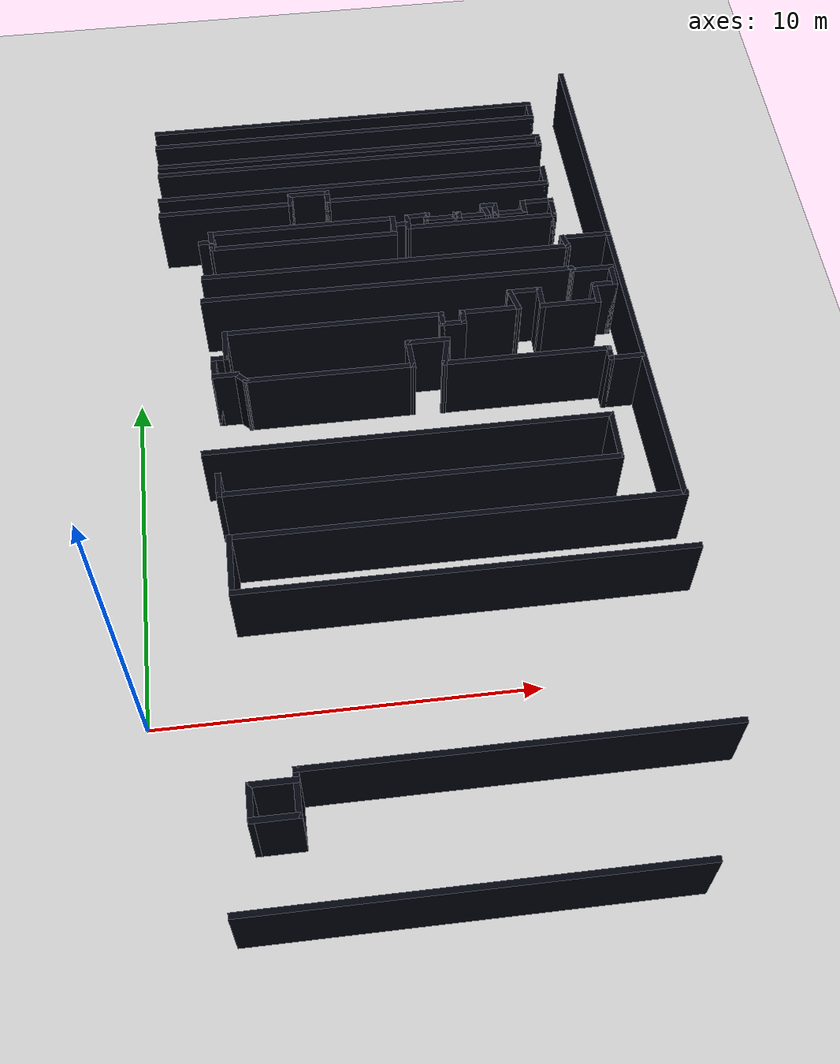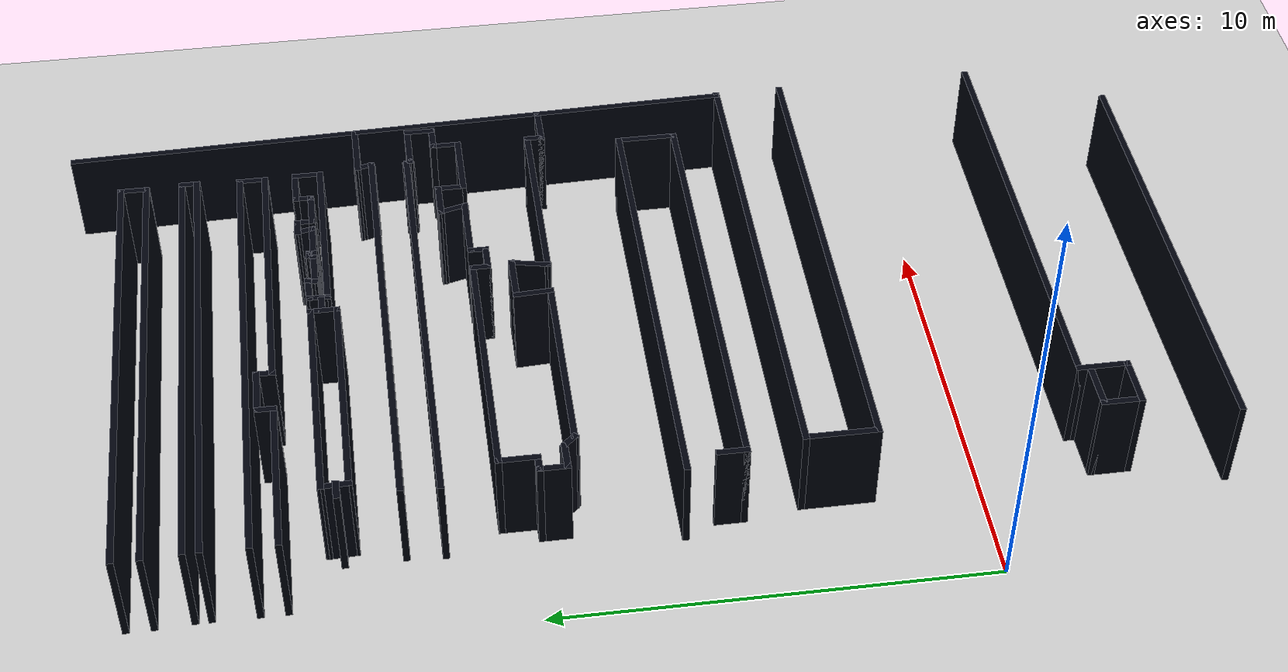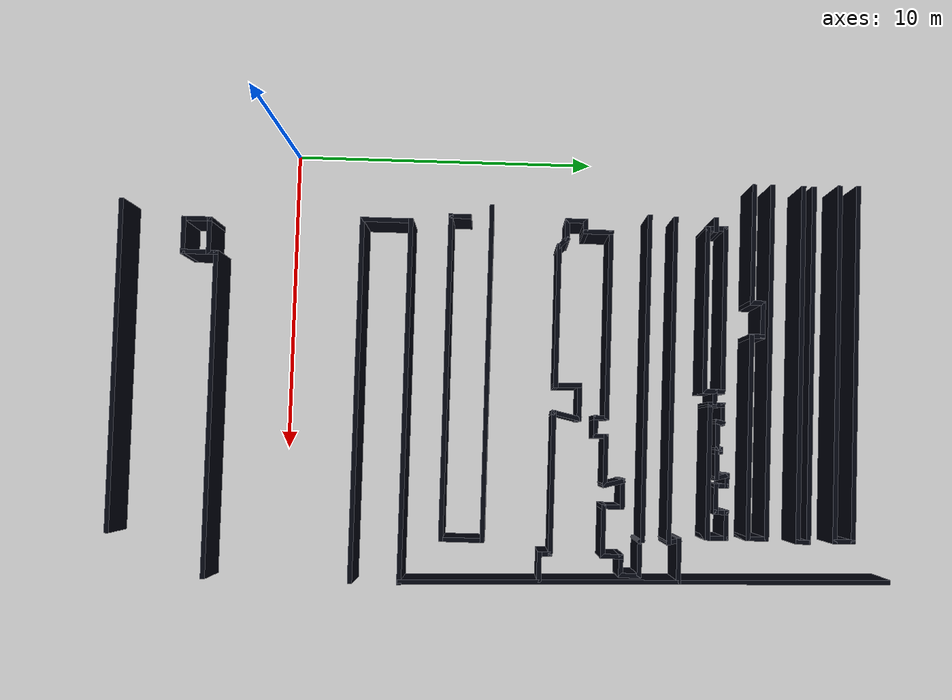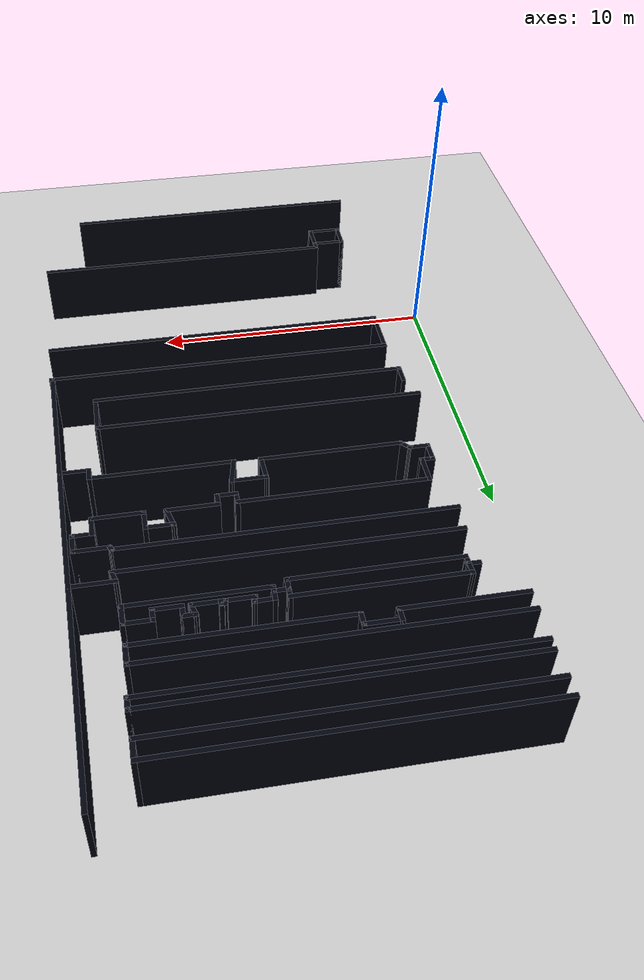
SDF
<sdf version="1.8">
 <world name="CDL_map">
  <model name="ground_plane">
   <static>1</static>
   <link name="link">
    <collision name="collision">
     <geometry><plane><normal>0 0 1</normal><size>100 100</size></plane></geometry>
    </collision>
    <visual name="visual">
     <geometry><plane><normal>0 0 1</normal><size>100 100</size></plane></geometry>
     <material>
      <ambient>0.8 0.8 0.8 1</ambient>
      <diffuse>0.8 0.8 0.8 1</diffuse>
      <specular>0.8 0.8 0.8 1</specular>
     </material>
     <plugin name="__default__" filename="__default__"/>
    </visual>
   </link>
   <plugin name="__default__" filename="__default__"/>
  </model>
  <model name="border">
   <pose>0 0 1 0 0 0</pose>
   <static>true</static>
   <link name="Wall_125">
    <pose>6.72296 18.1772 0 0 -0 0</pose>
    <static>true</static>
    <collision name="Wall_125_Collision"><geometry><box><size>11.75 0.15 2.5</size></box></geometry></collision>
    <visual name="Wall_125_Visual">
     <geometry><box><size>11.75 0.15 2.5</size></box></geometry>
     <material>
      <ambient>0.1 0.1 0.1 1</ambient>
      <diffuse>0 0.01 0.05 1</diffuse>
      <specular>0 0.01 0.05 1</specular>
     </material>
    </visual>
   </link>
   <link name="Wall_126">
    <pose>12.523 18.4772 0 0 -0 1.5708</pose>
    <static>true</static>
    <collision name="Wall_126_Collision"><geometry><box><size>0.75 0.15 2.5</size></box></geometry></collision>
    <visual name="Wall_126_Visual">
     <geometry><box><size>0.75 0.15 2.5</size></box></geometry>
     <material>
      <ambient>0.1 0.1 0.1 1</ambient>
      <diffuse>0 0.01 0.05 1</diffuse>
      <specular>0 0.01 0.05 1</specular>
     </material>
    </visual>
   </link>
   <link name="Wall_127">
    <pose>6.72296 18.7772 0 0 -0 3.14159</pose>
    <static>true</static>
    <collision name="Wall_127_Collision"><geometry><box><size>11.75 0.15 2.5</size></box></geometry></collision>
    <visual name="Wall_127_Visual">
     <geometry><box><size>11.75 0.15 2.5</size></box></geometry>
     <material>
      <ambient>0.1 0.1 0.1 1</ambient>
      <diffuse>0 0.01 0.05 1</diffuse>
      <specular>0 0.01 0.05 1</specular>
     </material>
    </visual>
   </link>
   <link name="Wall_130">
    <pose>6.77468 17.3239 0 0 -0 0</pose>
    <static>true</static>
    <collision name="Wall_130_Collision"><geometry><box><size>11.75 0.15 2.5</size></box></geometry></collision>
    <visual name="Wall_130_Visual">
     <geometry><box><size>11.75 0.15 2.5</size></box></geometry>
     <material>
      <ambient>0.1 0.1 0.1 1</ambient>
      <diffuse>0 0.01 0.05 1</diffuse>
      <specular>0 0.01 0.05 1</specular>
     </material>
    </visual>
   </link>
   <link name="Wall_131">
    <pose>12.5747 17.1489 0 0 -0 -1.5708</pose>
    <static>true</static>
    <collision name="Wall_131_Collision"><geometry><box><size>0.5 0.15 2.5</size></box></geometry></collision>
    <visual name="Wall_131_Visual">
     <geometry><box><size>0.5 0.15 2.5</size></box></geometry>
     <material>
      <ambient>0.1 0.1 0.1 1</ambient>
      <diffuse>0 0.01 0.05 1</diffuse>
      <specular>0 0.01 0.05 1</specular>
     </material>
    </visual>
   </link>
   <link name="Wall_132">
    <pose>6.77468 16.9739 0 0 -0 3.14159</pose>
    <static>true</static>
    <collision name="Wall_132_Collision"><geometry><box><size>11.75 0.15 2.5</size></box></geometry></collision>
    <visual name="Wall_132_Visual">
     <geometry><box><size>11.75 0.15 2.5</size></box></geometry>
     <material>
      <ambient>0.1 0.1 0.1 1</ambient>
      <diffuse>0 0.01 0.05 1</diffuse>
      <specular>0 0.01 0.05 1</specular>
     </material>
    </visual>
   </link>
   <link name="Wall_136">
    <pose>2.88675 15.3534 0 0 -0 0</pose>
    <static>true</static>
    <collision name="Wall_136_Collision"><geometry><box><size>4 0.15 2.5</size></box></geometry></collision>
    <visual name="Wall_136_Visual">
     <geometry><box><size>4 0.15 2.5</size></box></geometry>
     <material>
      <ambient>0.1 0.1 0.1 1</ambient>
      <diffuse>0 0.01 0.05 1</diffuse>
      <specular>0 0.01 0.05 1</specular>
     </material>
    </visual>
   </link>
   <link name="Wall_137">
    <pose>4.81175 15.5284 0 0 -0 1.5708</pose>
    <static>true</static>
    <collision name="Wall_137_Collision"><geometry><box><size>0.5 0.15 2.5</size></box></geometry></collision>
    <visual name="Wall_137_Visual">
     <geometry><box><size>0.5 0.15 2.5</size></box></geometry>
     <material>
      <ambient>0.1 0.1 0.1 1</ambient>
      <diffuse>0 0.01 0.05 1</diffuse>
      <specular>0 0.01 0.05 1</specular>
     </material>
    </visual>
   </link>
   <link name="Wall_138">
    <pose>5.36175 15.7034 0 0 -0 0</pose>
    <static>true</static>
    <collision name="Wall_138_Collision"><geometry><box><size>1.25 0.15 2.5</size></box></geometry></collision>
    <visual name="Wall_138_Visual">
     <geometry><box><size>1.25 0.15 2.5</size></box></geometry>
     <material>
      <ambient>0.1 0.1 0.1 1</ambient>
      <diffuse>0 0.01 0.05 1</diffuse>
      <specular>0 0.01 0.05 1</specular>
     </material>
    </visual>
   </link>
   <link name="Wall_139">
    <pose>5.91175 15.5284 0 0 -0 -1.5708</pose>
    <static>true</static>
    <collision name="Wall_139_Collision"><geometry><box><size>0.5 0.15 2.5</size></box></geometry></collision>
    <visual name="Wall_139_Visual">
     <geometry><box><size>0.5 0.15 2.5</size></box></geometry>
     <material>
      <ambient>0.1 0.1 0.1 1</ambient>
      <diffuse>0 0.01 0.05 1</diffuse>
      <specular>0 0.01 0.05 1</specular>
     </material>
    </visual>
   </link>
   <link name="Wall_140">
    <pose>9.21175 15.3534 0 0 -0 0</pose>
    <static>true</static>
    <collision name="Wall_140_Collision"><geometry><box><size>6.75 0.15 2.5</size></box></geometry></collision>
    <visual name="Wall_140_Visual">
     <geometry><box><size>6.75 0.15 2.5</size></box></geometry>
     <material>
      <ambient>0.1 0.1 0.1 1</ambient>
      <diffuse>0 0.01 0.05 1</diffuse>
      <specular>0 0.01 0.05 1</specular>
     </material>
    </visual>
   </link>
   <link name="Wall_141">
    <pose>12.5117 15.6534 0 0 -0 1.5708</pose>
    <static>true</static>
    <collision name="Wall_141_Collision"><geometry><box><size>0.75 0.15 2.5</size></box></geometry></collision>
    <visual name="Wall_141_Visual">
     <geometry><box><size>0.75 0.15 2.5</size></box></geometry>
     <material>
      <ambient>0.1 0.1 0.1 1</ambient>
      <diffuse>0 0.01 0.05 1</diffuse>
      <specular>0 0.01 0.05 1</specular>
     </material>
    </visual>
   </link>
   <link name="Wall_142">
    <pose>6.73675 15.9534 0 0 -0 3.14159</pose>
    <static>true</static>
    <collision name="Wall_142_Collision"><geometry><box><size>11.7 0.15 2.5</size></box></geometry></collision>
    <visual name="Wall_142_Visual">
     <geometry><box><size>11.7 0.15 2.5</size></box></geometry>
     <material>
      <ambient>0.1 0.1 0.1 1</ambient>
      <diffuse>0 0.01 0.05 1</diffuse>
      <specular>0 0.01 0.05 1</specular>
     </material>
    </visual>
   </link>
   <link name="Wall_149">
    <pose>2.39783 14.138 0 0 -0 -1.53063</pose>
    <static>true</static>
    <collision name="Wall_149_Collision">
     <geometry><box><size>0.744967 0.15 2.5</size></box></geometry>
    </collision>
    <visual name="Wall_149_Visual">
     <geometry><box><size>0.744967 0.15 2.5</size></box></geometry>
     <material>
      <ambient>0.1 0.1 0.1 1</ambient>
      <diffuse>0 0.01 0.05 1</diffuse>
      <specular>0 0.01 0.05 1</specular>
     </material>
    </visual>
   </link>
   <link name="Wall_150">
    <pose>5.08478 13.8408 0 0 -0 0</pose>
    <static>true</static>
    <collision name="Wall_150_Collision"><geometry><box><size>5.5 0.15 2.5</size></box></geometry></collision>
    <visual name="Wall_150_Visual">
     <geometry><box><size>5.5 0.15 2.5</size></box></geometry>
     <material>
      <ambient>0.1 0.1 0.1 1</ambient>
      <diffuse>0 0.01 0.05 1</diffuse>
      <specular>0 0.01 0.05 1</specular>
     </material>
    </visual>
   </link>
   <link name="Wall_151">
    <pose>7.75978 14.1408 0 0 -0 1.5708</pose>
    <static>true</static>
    <collision name="Wall_151_Collision"><geometry><box><size>0.75 0.15 2.5</size></box></geometry></collision>
    <visual name="Wall_151_Visual">
     <geometry><box><size>0.75 0.15 2.5</size></box></geometry>
     <material>
      <ambient>0.1 0.1 0.1 1</ambient>
      <diffuse>0 0.01 0.05 1</diffuse>
      <specular>0 0.01 0.05 1</specular>
     </material>
    </visual>
   </link>
   <link name="Wall_152">
    <pose>5.07283 14.438 0 0 -0 -3.14057</pose>
    <static>true</static>
    <collision name="Wall_152_Collision"><geometry><box><size>5.5239 0.15 2.5</size></box></geometry></collision>
    <visual name="Wall_152_Visual">
     <geometry><box><size>5.5239 0.15 2.5</size></box></geometry>
     <material>
      <ambient>0.1 0.1 0.1 1</ambient>
      <diffuse>0 0.01 0.05 1</diffuse>
      <specular>0 0.01 0.05 1</specular>
     </material>
    </visual>
   </link>
   <link name="Wall_157">
    <pose>2.26628 14.1135 0 0 -0 0</pose>
    <static>true</static>
    <collision name="Wall_157_Collision"><geometry><box><size>0.5 0.15 2.5</size></box></geometry></collision>
    <visual name="Wall_157_Visual">
     <geometry><box><size>0.5 0.15 2.5</size></box></geometry>
     <material>
      <ambient>0.1 0.1 0.1 1</ambient>
      <diffuse>0 0.01 0.05 1</diffuse>
      <specular>0 0.01 0.05 1</specular>
     </material>
    </visual>
   </link>
   <link name="Wall_159">
    <pose>8.19109 14.241 0 0 -0 -1.59747</pose>
    <static>true</static>
    <collision name="Wall_159_Collision">
     <geometry><box><size>0.566927 0.15 2.5</size></box></geometry>
    </collision>
    <visual name="Wall_159_Visual">
     <geometry><box><size>0.566927 0.15 2.5</size></box></geometry>
     <material>
      <ambient>0.1 0.1 0.1 1</ambient>
      <diffuse>0 0.01 0.05 1</diffuse>
      <specular>0 0.01 0.05 1</specular>
     </material>
    </visual>
   </link>
   <link name="Wall_161">
    <pose>10.3605 14.0326 0 0 -0 0</pose>
    <static>true</static>
    <collision name="Wall_161_Collision"><geometry><box><size>4.5 0.15 2.5</size></box></geometry></collision>
    <visual name="Wall_161_Visual">
     <geometry><box><size>4.5 0.15 2.5</size></box></geometry>
     <material>
      <ambient>0.1 0.1 0.1 1</ambient>
      <diffuse>0 0.01 0.05 1</diffuse>
      <specular>0 0.01 0.05 1</specular>
     </material>
    </visual>
   </link>
   <link name="Wall_162">
    <pose>12.5355 14.3326 0 0 -0 1.5708</pose>
    <static>true</static>
    <collision name="Wall_162_Collision"><geometry><box><size>0.75 0.15 2.5</size></box></geometry></collision>
    <visual name="Wall_162_Visual">
     <geometry><box><size>0.75 0.15 2.5</size></box></geometry>
     <material>
      <ambient>0.1 0.1 0.1 1</ambient>
      <diffuse>0 0.01 0.05 1</diffuse>
      <specular>0 0.01 0.05 1</specular>
     </material>
    </visual>
   </link>
   <link name="Wall_163">
    <pose>12.1105 14.6326 0 0 -0 3.14159</pose>
    <static>true</static>
    <collision name="Wall_163_Collision"><geometry><box><size>1 0.15 2.5</size></box></geometry></collision>
    <visual name="Wall_163_Visual">
     <geometry><box><size>1 0.15 2.5</size></box></geometry>
     <material>
      <ambient>0.1 0.1 0.1 1</ambient>
      <diffuse>0 0.01 0.05 1</diffuse>
      <specular>0 0.01 0.05 1</specular>
     </material>
    </visual>
   </link>
   <link name="Wall_164">
    <pose>11.6855 14.4576 0 0 -0 -1.5708</pose>
    <static>true</static>
    <collision name="Wall_164_Collision"><geometry><box><size>0.5 0.15 2.5</size></box></geometry></collision>
    <visual name="Wall_164_Visual">
     <geometry><box><size>0.5 0.15 2.5</size></box></geometry>
     <material>
      <ambient>0.1 0.1 0.1 1</ambient>
      <diffuse>0 0.01 0.05 1</diffuse>
      <specular>0 0.01 0.05 1</specular>
     </material>
    </visual>
   </link>
   <link name="Wall_165">
    <pose>11.2605 14.2826 0 0 -0 3.14159</pose>
    <static>true</static>
    <collision name="Wall_165_Collision"><geometry><box><size>1 0.15 2.5</size></box></geometry></collision>
    <visual name="Wall_165_Visual">
     <geometry><box><size>1 0.15 2.5</size></box></geometry>
     <material>
      <ambient>0.1 0.1 0.1 1</ambient>
      <diffuse>0 0.01 0.05 1</diffuse>
      <specular>0 0.01 0.05 1</specular>
     </material>
    </visual>
   </link>
   <link name="Wall_166">
    <pose>10.8355 14.4576 0 0 -0 1.5708</pose>
    <static>true</static>
    <collision name="Wall_166_Collision"><geometry><box><size>0.5 0.15 2.5</size></box></geometry></collision>
    <visual name="Wall_166_Visual">
     <geometry><box><size>0.5 0.15 2.5</size></box></geometry>
     <material>
      <ambient>0.1 0.1 0.1 1</ambient>
      <diffuse>0 0.01 0.05 1</diffuse>
      <specular>0 0.01 0.05 1</specular>
     </material>
    </visual>
   </link>
   <link name="Wall_167">
    <pose>10.6605 14.6326 0 0 -0 3.14159</pose>
    <static>true</static>
    <collision name="Wall_167_Collision"><geometry><box><size>0.5 0.15 2.5</size></box></geometry></collision>
    <visual name="Wall_167_Visual">
     <geometry><box><size>0.5 0.15 2.5</size></box></geometry>
     <material>
      <ambient>0.1 0.1 0.1 1</ambient>
      <diffuse>0 0.01 0.05 1</diffuse>
      <specular>0 0.01 0.05 1</specular>
     </material>
    </visual>
   </link>
   <link name="Wall_168">
    <pose>10.5308 14.4636 0 0 -0 -1.309</pose>
    <static>true</static>
    <collision name="Wall_168_Collision"><geometry><box><size>0.5 0.15 2.5</size></box></geometry></collision>
    <visual name="Wall_168_Visual">
     <geometry><box><size>0.5 0.15 2.5</size></box></geometry>
     <material>
      <ambient>0.1 0.1 0.1 1</ambient>
      <diffuse>0 0.01 0.05 1</diffuse>
      <specular>0 0.01 0.05 1</specular>
     </material>
    </visual>
   </link>
   <link name="Wall_169">
    <pose>10.1511 14.2945 0 0 -0 3.14159</pose>
    <static>true</static>
    <collision name="Wall_169_Collision"><geometry><box><size>1 0.15 2.5</size></box></geometry></collision>
    <visual name="Wall_169_Visual">
     <geometry><box><size>1 0.15 2.5</size></box></geometry>
     <material>
      <ambient>0.1 0.1 0.1 1</ambient>
      <diffuse>0 0.01 0.05 1</diffuse>
      <specular>0 0.01 0.05 1</specular>
     </material>
    </visual>
   </link>
   <link name="Wall_170">
    <pose>9.72612 14.3445 0 0 -0 1.5708</pose>
    <static>true</static>
    <collision name="Wall_170_Collision"><geometry><box><size>0.25 0.15 2.5</size></box></geometry></collision>
    <visual name="Wall_170_Visual">
     <geometry><box><size>0.25 0.15 2.5</size></box></geometry>
     <material>
      <ambient>0.1 0.1 0.1 1</ambient>
      <diffuse>0 0.01 0.05 1</diffuse>
      <specular>0 0.01 0.05 1</specular>
     </material>
    </visual>
   </link>
   <link name="Wall_171">
    <pose>9.67612 14.3945 0 0 -0 3.14159</pose>
    <static>true</static>
    <collision name="Wall_171_Collision"><geometry><box><size>0.25 0.15 2.5</size></box></geometry></collision>
    <visual name="Wall_171_Visual">
     <geometry><box><size>0.25 0.15 2.5</size></box></geometry>
     <material>
      <ambient>0.1 0.1 0.1 1</ambient>
      <diffuse>0 0.01 0.05 1</diffuse>
      <specular>0 0.01 0.05 1</specular>
     </material>
    </visual>
   </link>
   <link name="Wall_172">
    <pose>9.61318 14.3463 0 0 -0 -1.8326</pose>
    <static>true</static>
    <collision name="Wall_172_Collision"><geometry><box><size>0.25 0.15 2.5</size></box></geometry></collision>
    <visual name="Wall_172_Visual">
     <geometry><box><size>0.25 0.15 2.5</size></box></geometry>
     <material>
      <ambient>0.1 0.1 0.1 1</ambient>
      <diffuse>0 0.01 0.05 1</diffuse>
      <specular>0 0.01 0.05 1</specular>
     </material>
    </visual>
   </link>
   <link name="Wall_173">
    <pose>9.17524 14.298 0 0 -0 3.14159</pose>
    <static>true</static>
    <collision name="Wall_173_Collision"><geometry><box><size>1 0.15 2.5</size></box></geometry></collision>
    <visual name="Wall_173_Visual">
     <geometry><box><size>1 0.15 2.5</size></box></geometry>
     <material>
      <ambient>0.1 0.1 0.1 1</ambient>
      <diffuse>0 0.01 0.05 1</diffuse>
      <specular>0 0.01 0.05 1</specular>
     </material>
    </visual>
   </link>
   <link name="Wall_174">
    <pose>8.76874 14.3796 0 0 -0 1.34798</pose>
    <static>true</static>
    <collision name="Wall_174_Collision">
     <geometry><box><size>0.318063 0.15 2.5</size></box></geometry>
    </collision>
    <visual name="Wall_174_Visual">
     <geometry><box><size>0.318063 0.15 2.5</size></box></geometry>
     <material>
      <ambient>0.1 0.1 0.1 1</ambient>
      <diffuse>0 0.01 0.05 1</diffuse>
      <specular>0 0.01 0.05 1</specular>
     </material>
    </visual>
   </link>
   <link name="Wall_175">
    <pose>8.49194 14.4525 0 0 -0 -3.1214</pose>
    <static>true</static>
    <collision name="Wall_175_Collision">
     <geometry><box><size>0.740707 0.15 2.5</size></box></geometry>
    </collision>
    <visual name="Wall_175_Visual">
     <geometry><box><size>0.740707 0.15 2.5</size></box></geometry>
     <material>
      <ambient>0.1 0.1 0.1 1</ambient>
      <diffuse>0 0.01 0.05 1</diffuse>
      <specular>0 0.01 0.05 1</specular>
     </material>
    </visual>
   </link>
   <link name="Wall_177">
    <pose>13.3049 13.1183 0 0 -0 3.14159</pose>
    <static>true</static>
    <collision name="Wall_177_Collision"><geometry><box><size>1.5 0.15 2.5</size></box></geometry></collision>
    <visual name="Wall_177_Visual">
     <geometry><box><size>1.5 0.15 2.5</size></box></geometry>
     <material>
      <ambient>0.1 0.1 0.1 1</ambient>
      <diffuse>0 0.01 0.05 1</diffuse>
      <specular>0 0.01 0.05 1</specular>
     </material>
    </visual>
   </link>
   <link name="Wall_178">
    <pose>12.6752 12.9493 0 0 -0 -1.309</pose>
    <static>true</static>
    <collision name="Wall_178_Collision"><geometry><box><size>0.5 0.15 2.5</size></box></geometry></collision>
    <visual name="Wall_178_Visual">
     <geometry><box><size>0.5 0.15 2.5</size></box></geometry>
     <material>
      <ambient>0.1 0.1 0.1 1</ambient>
      <diffuse>0 0.01 0.05 1</diffuse>
      <specular>0 0.01 0.05 1</specular>
     </material>
    </visual>
   </link>
   <link name="Wall_179">
    <pose>7.42049 12.7803 0 0 -0 3.14159</pose>
    <static>true</static>
    <collision name="Wall_179_Collision"><geometry><box><size>10.75 0.15 2.5</size></box></geometry></collision>
    <visual name="Wall_179_Visual">
     <geometry><box><size>10.75 0.15 2.5</size></box></geometry>
     <material>
      <ambient>0.1 0.1 0.1 1</ambient>
      <diffuse>0 0.01 0.05 1</diffuse>
      <specular>0 0.01 0.05 1</specular>
     </material>
    </visual>
   </link>
   <link name="Wall_181">
    <pose>7.36949 11.9268 0 0 -0 0</pose>
    <static>true</static>
    <collision name="Wall_181_Collision"><geometry><box><size>10.75 0.15 2.5</size></box></geometry></collision>
    <visual name="Wall_181_Visual">
     <geometry><box><size>10.75 0.15 2.5</size></box></geometry>
     <material>
      <ambient>0.1 0.1 0.1 1</ambient>
      <diffuse>0 0.01 0.05 1</diffuse>
      <specular>0 0.01 0.05 1</specular>
     </material>
    </visual>
   </link>
   <link name="Wall_183">
    <pose>12.6945 11.8835 0 0 -0 -1.0472</pose>
    <static>true</static>
    <collision name="Wall_183_Collision"><geometry><box><size>0.25 0.15 2.5</size></box></geometry></collision>
    <visual name="Wall_183_Visual">
     <geometry><box><size>0.25 0.15 2.5</size></box></geometry>
     <material>
      <ambient>0.1 0.1 0.1 1</ambient>
      <diffuse>0 0.01 0.05 1</diffuse>
      <specular>0 0.01 0.05 1</specular>
     </material>
    </visual>
   </link>
   <link name="Wall_184">
    <pose>13.2695 11.8402 0 0 -0 0</pose>
    <static>true</static>
    <collision name="Wall_184_Collision"><geometry><box><size>1.25 0.15 2.5</size></box></geometry></collision>
    <visual name="Wall_184_Visual">
     <geometry><box><size>1.25 0.15 2.5</size></box></geometry>
     <material>
      <ambient>0.1 0.1 0.1 1</ambient>
      <diffuse>0 0.01 0.05 1</diffuse>
      <specular>0 0.01 0.05 1</specular>
     </material>
    </visual>
   </link>
   <link name="Wall_185">
    <pose>13.8195 11.5402 0 0 -0 -1.5708</pose>
    <static>true</static>
    <collision name="Wall_185_Collision"><geometry><box><size>0.75 0.15 2.5</size></box></geometry></collision>
    <visual name="Wall_185_Visual">
     <geometry><box><size>0.75 0.15 2.5</size></box></geometry>
     <material>
      <ambient>0.1 0.1 0.1 1</ambient>
      <diffuse>0 0.01 0.05 1</diffuse>
      <specular>0 0.01 0.05 1</specular>
     </material>
    </visual>
   </link>
   <link name="Wall_186">
    <pose>13.5195 11.2402 0 0 -0 3.14159</pose>
    <static>true</static>
    <collision name="Wall_186_Collision"><geometry><box><size>0.75 0.15 2.5</size></box></geometry></collision>
    <visual name="Wall_186_Visual">
     <geometry><box><size>0.75 0.15 2.5</size></box></geometry>
     <material>
      <ambient>0.1 0.1 0.1 1</ambient>
      <diffuse>0 0.01 0.05 1</diffuse>
      <specular>0 0.01 0.05 1</specular>
     </material>
    </visual>
   </link>
   <link name="Wall_187">
    <pose>13.2195 10.9402 0 0 -0 -1.5708</pose>
    <static>true</static>
    <collision name="Wall_187_Collision"><geometry><box><size>0.75 0.15 2.5</size></box></geometry></collision>
    <visual name="Wall_187_Visual">
     <geometry><box><size>0.75 0.15 2.5</size></box></geometry>
     <material>
      <ambient>0.1 0.1 0.1 1</ambient>
      <diffuse>0 0.01 0.05 1</diffuse>
      <specular>0 0.01 0.05 1</specular>
     </material>
    </visual>
   </link>
   <link name="Wall_188">
    <pose>12.4195 10.6402 0 0 -0 3.14159</pose>
    <static>true</static>
    <collision name="Wall_188_Collision"><geometry><box><size>1.75 0.15 2.5</size></box></geometry></collision>
    <visual name="Wall_188_Visual">
     <geometry><box><size>1.75 0.15 2.5</size></box></geometry>
     <material>
      <ambient>0.1 0.1 0.1 1</ambient>
      <diffuse>0 0.01 0.05 1</diffuse>
      <specular>0 0.01 0.05 1</specular>
     </material>
    </visual>
   </link>
   <link name="Wall_189">
    <pose>11.6195 10.9402 0 0 -0 1.5708</pose>
    <static>true</static>
    <collision name="Wall_189_Collision"><geometry><box><size>0.75 0.15 2.5</size></box></geometry></collision>
    <visual name="Wall_189_Visual">
     <geometry><box><size>0.75 0.15 2.5</size></box></geometry>
     <material>
      <ambient>0.1 0.1 0.1 1</ambient>
      <diffuse>0 0.01 0.05 1</diffuse>
      <specular>0 0.01 0.05 1</specular>
     </material>
    </visual>
   </link>
   <link name="Wall_190">
    <pose>11.1945 11.2402 0 0 -0 3.14159</pose>
    <static>true</static>
    <collision name="Wall_190_Collision"><geometry><box><size>1 0.15 2.5</size></box></geometry></collision>
    <visual name="Wall_190_Visual">
     <geometry><box><size>1 0.15 2.5</size></box></geometry>
     <material>
      <ambient>0.1 0.1 0.1 1</ambient>
      <diffuse>0 0.01 0.05 1</diffuse>
      <specular>0 0.01 0.05 1</specular>
     </material>
    </visual>
   </link>
   <link name="Wall_191">
    <pose>10.8471 10.9504 0 0 -0 -1.309</pose>
    <static>true</static>
    <collision name="Wall_191_Collision"><geometry><box><size>0.75 0.15 2.5</size></box></geometry></collision>
    <visual name="Wall_191_Visual">
     <geometry><box><size>0.75 0.15 2.5</size></box></geometry>
     <material>
      <ambient>0.1 0.1 0.1 1</ambient>
      <diffuse>0 0.01 0.05 1</diffuse>
      <specular>0 0.01 0.05 1</specular>
     </material>
    </visual>
   </link>
   <link name="Wall_192">
    <pose>10.1248 10.6606 0 0 -0 3.14159</pose>
    <static>true</static>
    <collision name="Wall_192_Collision"><geometry><box><size>1.75 0.15 2.5</size></box></geometry></collision>
    <visual name="Wall_192_Visual">
     <geometry><box><size>1.75 0.15 2.5</size></box></geometry>
     <material>
      <ambient>0.1 0.1 0.1 1</ambient>
      <diffuse>0 0.01 0.05 1</diffuse>
      <specular>0 0.01 0.05 1</specular>
     </material>
    </visual>
   </link>
   <link name="Wall_193">
    <pose>9.32478 10.4856 0 0 -0 -1.5708</pose>
    <static>true</static>
    <collision name="Wall_193_Collision"><geometry><box><size>0.5 0.15 2.5</size></box></geometry></collision>
    <visual name="Wall_193_Visual">
     <geometry><box><size>0.5 0.15 2.5</size></box></geometry>
     <material>
      <ambient>0.1 0.1 0.1 1</ambient>
      <diffuse>0 0.01 0.05 1</diffuse>
      <specular>0 0.01 0.05 1</specular>
     </material>
    </visual>
   </link>
   <link name="Wall_194">
    <pose>9.02478 10.3106 0 0 -0 3.14159</pose>
    <static>true</static>
    <collision name="Wall_194_Collision"><geometry><box><size>0.75 0.15 2.5</size></box></geometry></collision>
    <visual name="Wall_194_Visual">
     <geometry><box><size>0.75 0.15 2.5</size></box></geometry>
     <material>
      <ambient>0.1 0.1 0.1 1</ambient>
      <diffuse>0 0.01 0.05 1</diffuse>
      <specular>0 0.01 0.05 1</specular>
     </material>
    </visual>
   </link>
   <link name="Wall_195">
    <pose>8.72478 10.4856 0 0 -0 1.5708</pose>
    <static>true</static>
    <collision name="Wall_195_Collision"><geometry><box><size>0.5 0.15 2.5</size></box></geometry></collision>
    <visual name="Wall_195_Visual">
     <geometry><box><size>0.5 0.15 2.5</size></box></geometry>
     <material>
      <ambient>0.1 0.1 0.1 1</ambient>
      <diffuse>0 0.01 0.05 1</diffuse>
      <specular>0 0.01 0.05 1</specular>
     </material>
    </visual>
   </link>
   <link name="Wall_196">
    <pose>5.67478 10.6606 0 0 -0 3.14159</pose>
    <static>true</static>
    <collision name="Wall_196_Collision"><geometry><box><size>6.25 0.15 2.5</size></box></geometry></collision>
    <visual name="Wall_196_Visual">
     <geometry><box><size>6.25 0.15 2.5</size></box></geometry>
     <material>
      <ambient>0.1 0.1 0.1 1</ambient>
      <diffuse>0 0.01 0.05 1</diffuse>
      <specular>0 0.01 0.05 1</specular>
     </material>
    </visual>
   </link>
   <link name="Wall_197">
    <pose>2.62478 10.2356 0 0 -0 -1.5708</pose>
    <static>true</static>
    <collision name="Wall_197_Collision"><geometry><box><size>1 0.15 2.5</size></box></geometry></collision>
    <visual name="Wall_197_Visual">
     <geometry><box><size>1 0.15 2.5</size></box></geometry>
     <material>
      <ambient>0.1 0.1 0.1 1</ambient>
      <diffuse>0 0.01 0.05 1</diffuse>
      <specular>0 0.01 0.05 1</specular>
     </material>
    </visual>
   </link>
   <link name="Wall_198">
    <pose>2.44978 9.81062 0 0 -0 3.14159</pose>
    <static>true</static>
    <collision name="Wall_198_Collision"><geometry><box><size>0.5 0.15 2.5</size></box></geometry></collision>
    <visual name="Wall_198_Visual">
     <geometry><box><size>0.5 0.15 2.5</size></box></geometry>
     <material>
      <ambient>0.1 0.1 0.1 1</ambient>
      <diffuse>0 0.01 0.05 1</diffuse>
      <specular>0 0.01 0.05 1</specular>
     </material>
    </visual>
   </link>
   <link name="Wall_199">
    <pose>2.27478 9.51062 0 0 -0 -1.5708</pose>
    <static>true</static>
    <collision name="Wall_199_Collision"><geometry><box><size>0.75 0.15 2.5</size></box></geometry></collision>
    <visual name="Wall_199_Visual">
     <geometry><box><size>0.75 0.15 2.5</size></box></geometry>
     <material>
      <ambient>0.1 0.1 0.1 1</ambient>
      <diffuse>0 0.01 0.05 1</diffuse>
      <specular>0 0.01 0.05 1</specular>
     </material>
    </visual>
   </link>
   <link name="Wall_200">
    <pose>2.57478 9.21062 0 0 -0 0</pose>
    <static>true</static>
    <collision name="Wall_200_Collision"><geometry><box><size>0.75 0.15 2.5</size></box></geometry></collision>
    <visual name="Wall_200_Visual">
     <geometry><box><size>0.75 0.15 2.5</size></box></geometry>
     <material>
      <ambient>0.1 0.1 0.1 1</ambient>
      <diffuse>0 0.01 0.05 1</diffuse>
      <specular>0 0.01 0.05 1</specular>
     </material>
    </visual>
   </link>
   <link name="Wall_201">
    <pose>2.99852 9.08688 0 0 -0 -0.785398</pose>
    <static>true</static>
    <collision name="Wall_201_Collision"><geometry><box><size>0.5 0.15 2.5</size></box></geometry></collision>
    <visual name="Wall_201_Visual">
     <geometry><box><size>0.5 0.15 2.5</size></box></geometry>
     <material>
      <ambient>0.1 0.1 0.1 1</ambient>
      <diffuse>0 0.01 0.05 1</diffuse>
      <specular>0 0.01 0.05 1</specular>
     </material>
    </visual>
   </link>
   <link name="Wall_202">
    <pose>5.42226 8.96313 0 0 -0 0</pose>
    <static>true</static>
    <collision name="Wall_202_Collision"><geometry><box><size>4.75 0.15 2.5</size></box></geometry></collision>
    <visual name="Wall_202_Visual">
     <geometry><box><size>4.75 0.15 2.5</size></box></geometry>
     <material>
      <ambient>0.1 0.1 0.1 1</ambient>
      <diffuse>0 0.01 0.05 1</diffuse>
      <specular>0 0.01 0.05 1</specular>
     </material>
    </visual>
   </link>
   <link name="Wall_203">
    <pose>7.70153 9.3609 0 0 -0 1.62289</pose>
    <static>true</static>
    <collision name="Wall_203_Collision">
     <geometry><box><size>0.946615 0.15 2.5</size></box></geometry>
    </collision>
    <visual name="Wall_203_Visual">
     <geometry><box><size>0.946615 0.15 2.5</size></box></geometry>
     <material>
      <ambient>0.1 0.1 0.1 1</ambient>
      <diffuse>0 0.01 0.05 1</diffuse>
      <specular>0 0.01 0.05 1</specular>
     </material>
    </visual>
   </link>
   <link name="Wall_204">
    <pose>8.23929 9.75867 0 0 -0 0</pose>
    <static>true</static>
    <collision name="Wall_204_Collision"><geometry><box><size>1.25 0.15 2.5</size></box></geometry></collision>
    <visual name="Wall_204_Visual">
     <geometry><box><size>1.25 0.15 2.5</size></box></geometry>
     <material>
      <ambient>0.1 0.1 0.1 1</ambient>
      <diffuse>0 0.01 0.05 1</diffuse>
      <specular>0 0.01 0.05 1</specular>
     </material>
    </visual>
   </link>
   <link name="Wall_205">
    <pose>8.69153 9.34642 0 0 -0 -1.78402</pose>
    <static>true</static>
    <collision name="Wall_205_Collision">
     <geometry><box><size>0.993602 0.15 2.5</size></box></geometry>
    </collision>
    <visual name="Wall_205_Visual">
     <geometry><box><size>0.993602 0.15 2.5</size></box></geometry>
     <material>
      <ambient>0.1 0.1 0.1 1</ambient>
      <diffuse>0 0.01 0.05 1</diffuse>
      <specular>0 0.01 0.05 1</specular>
     </material>
    </visual>
   </link>
   <link name="Wall_206">
    <pose>10.9023 8.93417 0 0 -0 0</pose>
    <static>true</static>
    <collision name="Wall_206_Collision"><geometry><box><size>4.75 0.15 2.5</size></box></geometry></collision>
    <visual name="Wall_206_Visual">
     <geometry><box><size>4.75 0.15 2.5</size></box></geometry>
     <material>
      <ambient>0.1 0.1 0.1 1</ambient>
      <diffuse>0 0.01 0.05 1</diffuse>
      <specular>0 0.01 0.05 1</specular>
     </material>
    </visual>
   </link>
   <link name="Wall_207">
    <pose>13.2023 8.75917 0 0 -0 -1.5708</pose>
    <static>true</static>
    <collision name="Wall_207_Collision"><geometry><box><size>0.5 0.15 2.5</size></box></geometry></collision>
    <visual name="Wall_207_Visual">
     <geometry><box><size>0.5 0.15 2.5</size></box></geometry>
     <material>
      <ambient>0.1 0.1 0.1 1</ambient>
      <diffuse>0 0.01 0.05 1</diffuse>
      <specular>0 0.01 0.05 1</specular>
     </material>
    </visual>
   </link>
   <link name="Wall_208">
    <pose>13.6273 8.58417 0 0 -0 0</pose>
    <static>true</static>
    <collision name="Wall_208_Collision"><geometry><box><size>1 0.15 2.5</size></box></geometry></collision>
    <visual name="Wall_208_Visual">
     <geometry><box><size>1 0.15 2.5</size></box></geometry>
     <material>
      <ambient>0.1 0.1 0.1 1</ambient>
      <diffuse>0 0.01 0.05 1</diffuse>
      <specular>0 0.01 0.05 1</specular>
     </material>
    </visual>
   </link>
   <link name="Wall_211">
    <pose>7.95388 14.18 0 0 -0 0</pose>
    <static>true</static>
    <collision name="Wall_211_Collision"><geometry><box><size>0.5 0.15 2.5</size></box></geometry></collision>
    <visual name="Wall_211_Visual">
     <geometry><box><size>0.5 0.15 2.5</size></box></geometry>
     <material>
      <ambient>0.1 0.1 0.1 1</ambient>
      <diffuse>0 0.01 0.05 1</diffuse>
      <specular>0 0.01 0.05 1</specular>
     </material>
    </visual>
   </link>
   <link name="Wall_213">
    <pose>7.3648 6.70702 0 0 -0 0.000189</pose>
    <static>true</static>
    <collision name="Wall_213_Collision"><geometry><box><size>11.0891 0.15 2.5</size></box></geometry></collision>
    <visual name="Wall_213_Visual">
     <geometry><box><size>11.0891 0.15 2.5</size></box></geometry>
     <material>
      <ambient>0.1 0.1 0.1 1</ambient>
      <diffuse>0 0.01 0.05 1</diffuse>
      <specular>0 0.01 0.05 1</specular>
     </material>
    </visual>
   </link>
   <link name="Wall_214">
    <pose>12.8344 6.03306 0 0 -0 -1.5708</pose>
    <static>true</static>
    <collision name="Wall_214_Collision"><geometry><box><size>1.5 0.15 2.5</size></box></geometry></collision>
    <visual name="Wall_214_Visual">
     <geometry><box><size>1.5 0.15 2.5</size></box></geometry>
     <material>
      <ambient>0.1 0.1 0.1 1</ambient>
      <diffuse>0 0.01 0.05 1</diffuse>
      <specular>0 0.01 0.05 1</specular>
     </material>
    </visual>
   </link>
   <link name="Wall_215">
    <pose>7.53436 5.35806 0 0 -0 3.14159</pose>
    <static>true</static>
    <collision name="Wall_215_Collision"><geometry><box><size>10.75 0.15 2.5</size></box></geometry></collision>
    <visual name="Wall_215_Visual">
     <geometry><box><size>10.75 0.15 2.5</size></box></geometry>
     <material>
      <ambient>0.1 0.1 0.1 1</ambient>
      <diffuse>0 0.01 0.05 1</diffuse>
      <specular>0 0.01 0.05 1</specular>
     </material>
    </visual>
   </link>
   <link name="Wall_216">
    <pose>2.23436 5.65806 0 0 -0 1.5708</pose>
    <static>true</static>
    <collision name="Wall_216_Collision"><geometry><box><size>0.75 0.15 2.5</size></box></geometry></collision>
    <visual name="Wall_216_Visual">
     <geometry><box><size>0.75 0.15 2.5</size></box></geometry>
     <material>
      <ambient>0.1 0.1 0.1 1</ambient>
      <diffuse>0 0.01 0.05 1</diffuse>
      <specular>0 0.01 0.05 1</specular>
     </material>
    </visual>
   </link>
   <link name="Wall_220">
    <pose>8.35531 4.04509 0 0 -0 3.14159</pose>
    <static>true</static>
    <collision name="Wall_220_Collision"><geometry><box><size>12 0.15 2.5</size></box></geometry></collision>
    <visual name="Wall_220_Visual">
     <geometry><box><size>12 0.15 2.5</size></box></geometry>
     <material>
      <ambient>0.1 0.1 0.1 1</ambient>
      <diffuse>0 0.01 0.05 1</diffuse>
      <specular>0 0.01 0.05 1</specular>
     </material>
    </visual>
   </link>
   <link name="Wall_221">
    <pose>2.43031 3.24509 0 0 -0 -1.5708</pose>
    <static>true</static>
    <collision name="Wall_221_Collision"><geometry><box><size>1.75 0.15 2.5</size></box></geometry></collision>
    <visual name="Wall_221_Visual">
     <geometry><box><size>1.75 0.15 2.5</size></box></geometry>
     <material>
      <ambient>0.1 0.1 0.1 1</ambient>
      <diffuse>0 0.01 0.05 1</diffuse>
      <specular>0 0.01 0.05 1</specular>
     </material>
    </visual>
   </link>
   <link name="Wall_222">
    <pose>8.35531 2.44509 0 0 -0 0</pose>
    <static>true</static>
    <collision name="Wall_222_Collision"><geometry><box><size>12 0.15 2.5</size></box></geometry></collision>
    <visual name="Wall_222_Visual">
     <geometry><box><size>12 0.15 2.5</size></box></geometry>
     <material>
      <ambient>0.1 0.1 0.1 1</ambient>
      <diffuse>0 0.01 0.05 1</diffuse>
      <specular>0 0.01 0.05 1</specular>
     </material>
    </visual>
   </link>
   <link name="Wall_224">
    <pose>8.96948 -2.33777 0 0 -0 3.14159</pose>
    <static>true</static>
    <collision name="Wall_224_Collision"><geometry><box><size>10.75 0.15 2.5</size></box></geometry></collision>
    <visual name="Wall_224_Visual">
     <geometry><box><size>10.75 0.15 2.5</size></box></geometry>
     <material>
      <ambient>0.1 0.1 0.1 1</ambient>
      <diffuse>0 0.01 0.05 1</diffuse>
      <specular>0 0.01 0.05 1</specular>
     </material>
    </visual>
   </link>
   <link name="Wall_225">
    <pose>3.66948 -2.88777 0 0 -0 -1.5708</pose>
    <static>true</static>
    <collision name="Wall_225_Collision"><geometry><box><size>1.25 0.15 2.5</size></box></geometry></collision>
    <visual name="Wall_225_Visual">
     <geometry><box><size>1.25 0.15 2.5</size></box></geometry>
     <material>
      <ambient>0.1 0.1 0.1 1</ambient>
      <diffuse>0 0.01 0.05 1</diffuse>
      <specular>0 0.01 0.05 1</specular>
     </material>
    </visual>
   </link>
   <link name="Wall_226">
    <pose>3.11948 -3.43777 0 0 -0 3.14159</pose>
    <static>true</static>
    <collision name="Wall_226_Collision"><geometry><box><size>1.25 0.15 2.5</size></box></geometry></collision>
    <visual name="Wall_226_Visual">
     <geometry><box><size>1.25 0.15 2.5</size></box></geometry>
     <material>
      <ambient>0.1 0.1 0.1 1</ambient>
      <diffuse>0 0.01 0.05 1</diffuse>
      <specular>0 0.01 0.05 1</specular>
     </material>
    </visual>
   </link>
   <link name="Wall_227">
    <pose>2.56948 -3.01277 0 0 -0 1.5708</pose>
    <static>true</static>
    <collision name="Wall_227_Collision"><geometry><box><size>1 0.15 2.5</size></box></geometry></collision>
    <visual name="Wall_227_Visual">
     <geometry><box><size>1 0.15 2.5</size></box></geometry>
     <material>
      <ambient>0.1 0.1 0.1 1</ambient>
      <diffuse>0 0.01 0.05 1</diffuse>
      <specular>0 0.01 0.05 1</specular>
     </material>
    </visual>
   </link>
   <link name="Wall_228">
    <pose>3.11948 -2.58777 0 0 -0 0</pose>
    <static>true</static>
    <collision name="Wall_228_Collision"><geometry><box><size>1.25 0.15 2.5</size></box></geometry></collision>
    <visual name="Wall_228_Visual">
     <geometry><box><size>1.25 0.15 2.5</size></box></geometry>
     <material>
      <ambient>0.1 0.1 0.1 1</ambient>
      <diffuse>0 0.01 0.05 1</diffuse>
      <specular>0 0.01 0.05 1</specular>
     </material>
    </visual>
   </link>
   <link name="Wall_230">
    <pose>7.4557 -5.52626 0 0 -0 0</pose>
    <static>true</static>
    <collision name="Wall_230_Collision"><geometry><box><size>11 0.15 2.5</size></box></geometry></collision>
    <visual name="Wall_230_Visual">
     <geometry><box><size>11 0.15 2.5</size></box></geometry>
     <material>
      <ambient>0.1 0.1 0.1 1</ambient>
      <diffuse>0 0.01 0.05 1</diffuse>
      <specular>0 0.01 0.05 1</specular>
     </material>
    </visual>
   </link>
   <link name="Wall_55">
    <pose>14.0208 12 0 0 -0 -1.54183</pose>
    <static>true</static>
    <collision name="Wall_55_Collision"><geometry><box><size>16.0067 0.15 2.5</size></box></geometry></collision>
    <visual name="Wall_55_Visual">
     <geometry><box><size>16.0067 0.15 2.5</size></box></geometry>
     <material>
      <ambient>0.1 0.1 0.1 1</ambient>
      <diffuse>0 0.01 0.05 1</diffuse>
      <specular>0 0.01 0.05 1</specular>
     </material>
    </visual>
   </link>
  </model>
 </world>
</sdf>
